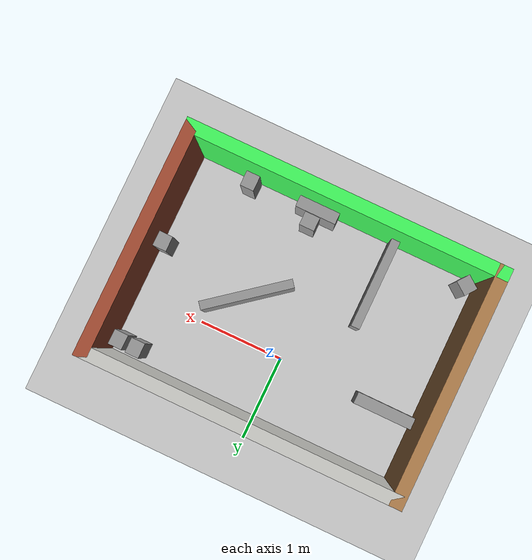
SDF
<sdf version="1.6">
 <world name="default">
  <light name="sun" type="directional">
   <pose>0 0 10 0 -0 0</pose>
   <diffuse>0.8 0.8 0.8 1</diffuse>
   <specular>0.1 0.1 0.1 1</specular>
   <attenuation>
    <range>1000</range>
    <constant>0.9</constant>
    <linear>0.01</linear>
    <quadratic>0.001</quadratic>
   </attenuation>
   <direction>-0.5 0.5 -1</direction>
  </light>
  <model name="ground_plane">
   <static>1</static>
   <link name="link">
    <collision name="collision">
     <geometry><plane><normal>0 0 1</normal><size>100 100</size></plane></geometry>
     <surface><friction><ode><mu>100</mu><mu2>50</mu2></ode></friction></surface>
    </collision>
    <visual name="visual">
     <cast_shadows>0</cast_shadows>
     <geometry><plane><normal>0 0 1</normal><size>100 100</size></plane></geometry>
     <material>
      <script><uri>file://media/materials/scripts/gazebo.material</uri><name>Gazebo/Grey</name></script>
     </material>
    </visual>
   </link>
  </model>
  <gravity>0 0 -9.8</gravity>
  <magnetic_field>6e-06 2.3e-05 -4.2e-05</magnetic_field>
  <atmosphere type="adiabatic"/>
  <physics name="default_physics" default="0" type="ode">
   <max_step_size>0.001</max_step_size>
   <real_time_factor>1</real_time_factor>
   <real_time_update_rate>1000</real_time_update_rate>
  </physics>
  <scene><ambient>0.4 0.4 0.4 1</ambient><background>0.7 0.7 0.7 1</background><shadows>1</shadows></scene>
  <spherical_coordinates>
   <surface_model>EARTH_WGS84</surface_model>
   <latitude_deg>0</latitude_deg>
   <longitude_deg>0</longitude_deg>
   <elevation>0</elevation>
   <heading_deg>0</heading_deg>
  </spherical_coordinates>
  <model name="unit_box_0_clone_clone_clone">
   <pose>-1.28418 0.019089 0.198593 1e-06 -0 -0.000291</pose>
   <link name="link">
    <inertial>
     <mass>1</mass>
     <inertia>
      <ixx>0.166667</ixx>
      <ixy>0</ixy>
      <ixz>0</ixz>
      <iyy>0.166667</iyy>
      <iyz>0</iyz>
      <izz>0.166667</izz>
     </inertia>
    </inertial>
    <collision name="collision">
     <geometry><box><size>0.689514 0.134733 0.397192</size></box></geometry>
    </collision>
    <visual name="visual">
     <geometry><box><size>0.689514 0.134733 0.397192</size></box></geometry>
     <material>
      <script><name>Gazebo/Grey</name><uri>file://media/materials/scripts/gazebo.material</uri></script>
     </material>
    </visual>
   </link>
  </model>
  <model name="unit_box_0_clone_clone_clone_clone_clone">
   <pose>1.7153 -0.624247 0.251114 -2e-06 -1e-06 -0.007672</pose>
   <link name="link">
    <inertial>
     <mass>1</mass>
     <inertia>
      <ixx>0.166667</ixx>
      <ixy>0</ixy>
      <ixz>0</ixz>
      <iyy>0.166667</iyy>
      <iyz>0</iyz>
      <izz>0.166667</izz>
     </inertia>
    </inertial>
    <collision name="collision"><geometry><box><size>0.16127 0.17833 0.502227</size></box></geometry></collision>
    <visual name="visual">
     <geometry><box><size>0.16127 0.17833 0.502227</size></box></geometry>
     <material>
      <script><name>Gazebo/Grey</name><uri>file://media/materials/scripts/gazebo.material</uri></script>
     </material>
    </visual>
   </link>
  </model>
  <model name="unit_box_0_clone_clone_clone_clone_clone_clone_0_clone">
   <pose>-0.597534 -1.19661 0.251109 8e-06 0 0.000315</pose>
   <link name="link">
    <inertial>
     <mass>1</mass>
     <inertia>
      <ixx>0.166667</ixx>
      <ixy>0</ixy>
      <ixz>0</ixz>
      <iyy>0.166667</iyy>
      <iyz>0</iyz>
      <izz>0.166667</izz>
     </inertia>
    </inertial>
    <collision name="collision"><geometry><box><size>0.10135 1.0581 0.502227</size></box></geometry></collision>
    <visual name="visual">
     <geometry><box><size>0.10135 1.0581 0.502227</size></box></geometry>
     <material>
      <script><name>Gazebo/Grey</name><uri>file://media/materials/scripts/gazebo.material</uri></script>
     </material>
    </visual>
   </link>
  </model>
  <model name="unit_box_0_clone_clone_clone_clone_clone_clone_0_clone_0">
   <pose>1.1346 -1.63604 0.251113 1e-06 3e-06 9e-06</pose>
   <link name="link">
    <inertial>
     <mass>1</mass>
     <inertia>
      <ixx>0.166667</ixx>
      <ixy>0</ixy>
      <ixz>0</ixz>
      <iyy>0.166667</iyy>
      <iyz>0</iyz>
      <izz>0.166667</izz>
     </inertia>
    </inertial>
    <collision name="collision"><geometry><box><size>0.16127 0.17833 0.502227</size></box></geometry></collision>
    <visual name="visual">
     <geometry><box><size>0.16127 0.17833 0.502227</size></box></geometry>
     <material>
      <script><name>Gazebo/Grey</name><uri>file://media/materials/scripts/gazebo.material</uri></script>
     </material>
    </visual>
   </link>
  </model>
  <model name="unit_box_0_clone_clone_clone_clone_clone_clone_0_clone_0_clone">
   <pose>0.324525 -1.66412 0.251114 0 1e-06 0.000188</pose>
   <link name="link">
    <inertial>
     <mass>1</mass>
     <inertia>
      <ixx>0.166667</ixx>
      <ixy>0</ixy>
      <ixz>0</ixz>
      <iyy>0.166667</iyy>
      <iyz>0</iyz>
      <izz>0.166667</izz>
     </inertia>
    </inertial>
    <collision name="collision">
     <geometry><box><size>0.479883 0.134009 0.502227</size></box></geometry>
    </collision>
    <visual name="visual">
     <geometry><box><size>0.479883 0.134009 0.502227</size></box></geometry>
     <material>
      <script><name>Gazebo/Grey</name><uri>file://media/materials/scripts/gazebo.material</uri></script>
     </material>
    </visual>
   </link>
  </model>
  <model name="expo3">
   <pose>0.074397 -0.511929 0 0 -0 0</pose>
   <link name="Wall_32">
    <collision name="Wall_32_Collision">
     <geometry><box><size>3.75 0.15 1</size></box></geometry>
     <pose>0 0 0.5 0 -0 0</pose>
    </collision>
    <visual name="Wall_32_Visual">
     <pose>0 0 0.5 0 -0 0</pose>
     <geometry><box><size>3.75 0.15 1</size></box></geometry>
     <material>
      <script><uri>file://media/materials/scripts/gazebo.material</uri><name>Gazebo/CeilingTiled</name></script>
      <ambient>0.435294 0.796078 0.67451 1</ambient>
     </material>
    </visual>
    <pose>0 1.3 0 0 -0 0</pose>
   </link>
   <link name="Wall_33">
    <collision name="Wall_33_Collision">
     <geometry><box><size>2.75 0.15 1</size></box></geometry>
     <pose>0 0 0.5 0 -0 0</pose>
    </collision>
    <visual name="Wall_33_Visual">
     <pose>0 0 0.5 0 -0 0</pose>
     <geometry><box><size>2.75 0.15 1</size></box></geometry>
     <material>
      <script><uri>file://media/materials/scripts/gazebo.material</uri><name>Gazebo/Bricks</name></script>
      <ambient>1 1 1 1</ambient>
     </material>
    </visual>
    <pose>1.8 0 0 0 0 -1.5708</pose>
   </link>
   <link name="Wall_34">
    <collision name="Wall_34_Collision">
     <geometry><box><size>3.75 0.15 1</size></box></geometry>
     <pose>0 0 0.5 0 -0 0</pose>
    </collision>
    <visual name="Wall_34_Visual">
     <pose>0 0 0.5 0 -0 0</pose>
     <geometry><box><size>3.75 0.15 1</size></box></geometry>
     <material>
      <script><uri>file://media/materials/scripts/gazebo.material</uri><name>Gazebo/Grey</name></script>
      <ambient>0.254902 1 0.364706 1</ambient>
     </material>
    </visual>
    <pose>0 -1.3 0 0 -0 3.14159</pose>
   </link>
   <link name="Wall_35">
    <collision name="Wall_35_Collision">
     <geometry><box><size>2.75 0.15 1</size></box></geometry>
     <pose>0 0 0.5 0 -0 0</pose>
    </collision>
    <visual name="Wall_35_Visual">
     <pose>0 0 0.5 0 -0 0</pose>
     <geometry><box><size>2.75 0.15 1</size></box></geometry>
     <material>
      <script><uri>file://media/materials/scripts/gazebo.material</uri><name>Gazebo/Wood</name></script>
      <ambient>1 1 1 1</ambient>
     </material>
    </visual>
    <pose>-1.8 0 0 0 -0 1.5708</pose>
   </link>
   <static>1</static>
  </model>
  <model name="unit_box_0_clone_clone_clone_clone_clone_clone_0_clone_1_clone_1">
   <pose>0.351411 -1.51171 0.251113 1e-06 3e-06 1.57126</pose>
   <link name="link">
    <inertial>
     <mass>1</mass>
     <inertia>
      <ixx>0.166667</ixx>
      <ixy>0</ixy>
      <ixz>0</ixz>
      <iyy>0.166667</iyy>
      <iyz>0</iyz>
      <izz>0.166667</izz>
     </inertia>
    </inertial>
    <collision name="collision">
     <geometry><box><size>0.161271 0.178331 0.502227</size></box></geometry>
    </collision>
    <visual name="visual">
     <geometry><box><size>0.161271 0.178331 0.502227</size></box></geometry>
     <material>
      <script><name>Gazebo/Grey</name><uri>file://media/materials/scripts/gazebo.material</uri></script>
     </material>
    </visual>
   </link>
  </model>
  <model name="unit_box_0_clone_clone_clone_clone_clone_clone_0_clone_1_clone_0_clone">
   <pose>1.68692 0.557365 0.251113 -3e-06 -1e-06 -0.01696</pose>
   <link name="link">
    <inertial>
     <mass>1</mass>
     <inertia>
      <ixx>0.166667</ixx>
      <ixy>0</ixy>
      <ixz>0</ixz>
      <iyy>0.166667</iyy>
      <iyz>0</iyz>
      <izz>0.166667</izz>
     </inertia>
    </inertial>
    <collision name="collision">
     <geometry><box><size>0.161271 0.178331 0.502227</size></box></geometry>
    </collision>
    <visual name="visual">
     <geometry><box><size>0.161271 0.178331 0.502227</size></box></geometry>
     <material>
      <script><name>Gazebo/Grey</name><uri>file://media/materials/scripts/gazebo.material</uri></script>
     </material>
    </visual>
   </link>
  </model>
  <model name="unit_box_0_clone_clone_clone_clone_clone_clone_0_clone_1_clone">
   <pose>-1.50837 -1.61051 0.251114 2e-06 1e-06 0.927914</pose>
   <link name="link">
    <inertial>
     <mass>1</mass>
     <inertia>
      <ixx>0.166667</ixx>
      <ixy>0</ixy>
      <ixz>0</ixz>
      <iyy>0.166667</iyy>
      <iyz>0</iyz>
      <izz>0.166667</izz>
     </inertia>
    </inertial>
    <collision name="collision">
     <geometry><box><size>0.161271 0.178331 0.502227</size></box></geometry>
    </collision>
    <visual name="visual">
     <geometry><box><size>0.161271 0.178331 0.502227</size></box></geometry>
     <material>
      <script><name>Gazebo/Grey</name><uri>file://media/materials/scripts/gazebo.material</uri></script>
     </material>
    </visual>
   </link>
  </model>
  <model name="unit_box_0_clone_clone_clone_clone_clone_clone_0_clone_clone">
   <pose>0.631472 -0.486267 0.251109 8e-06 0 -0.895685</pose>
   <link name="link">
    <inertial>
     <mass>1</mass>
     <inertia>
      <ixx>0.166667</ixx>
      <ixy>0</ixy>
      <ixz>0</ixz>
      <iyy>0.166667</iyy>
      <iyz>0</iyz>
      <izz>0.166667</izz>
     </inertia>
    </inertial>
    <collision name="collision"><geometry><box><size>0.10135 1.0581 0.502227</size></box></geometry></collision>
    <visual name="visual">
     <geometry><box><size>0.10135 1.0581 0.502227</size></box></geometry>
     <material>
      <script><name>Gazebo/Grey</name><uri>file://media/materials/scripts/gazebo.material</uri></script>
     </material>
    </visual>
   </link>
  </model>
  <model name="unit_box_0_clone_clone_clone_clone_clone_clone_0_clone_0_clone_0">
   <pose>1.4805 0.562131 0.251113 -1e-06 -3e-06 1e-06</pose>
   <link name="link">
    <inertial>
     <mass>1</mass>
     <inertia>
      <ixx>0.166667</ixx>
      <ixy>0</ixy>
      <ixz>0</ixz>
      <iyy>0.166667</iyy>
      <iyz>0</iyz>
      <izz>0.166667</izz>
     </inertia>
    </inertial>
    <collision name="collision"><geometry><box><size>0.16127 0.17833 0.502227</size></box></geometry></collision>
    <visual name="visual">
     <geometry><box><size>0.16127 0.17833 0.502227</size></box></geometry>
     <material>
      <script><name>Gazebo/Grey</name><uri>file://media/materials/scripts/gazebo.material</uri></script>
     </material>
    </visual>
   </link>
  </model>
 </world>
</sdf>
